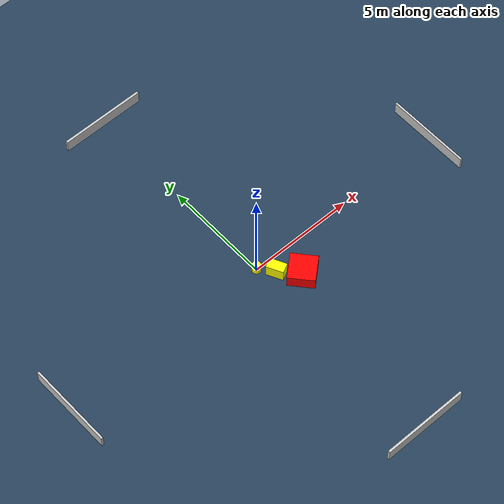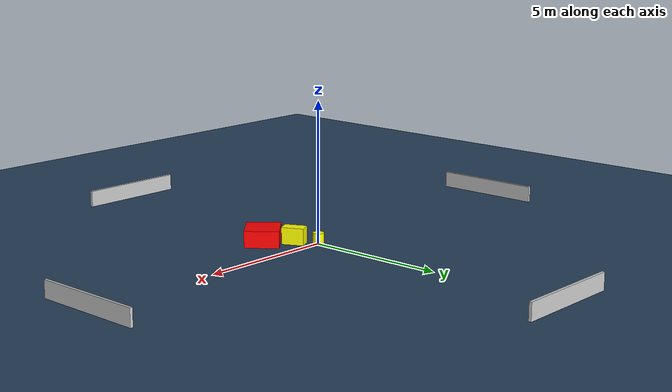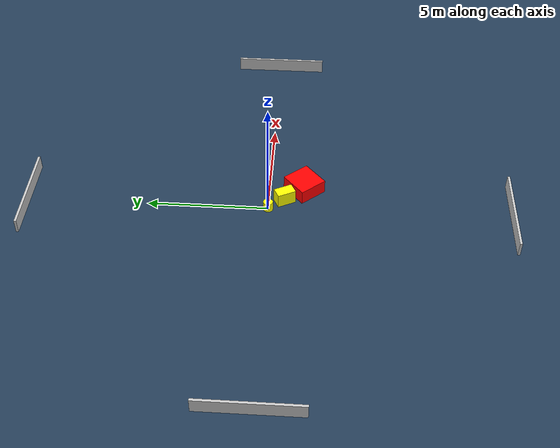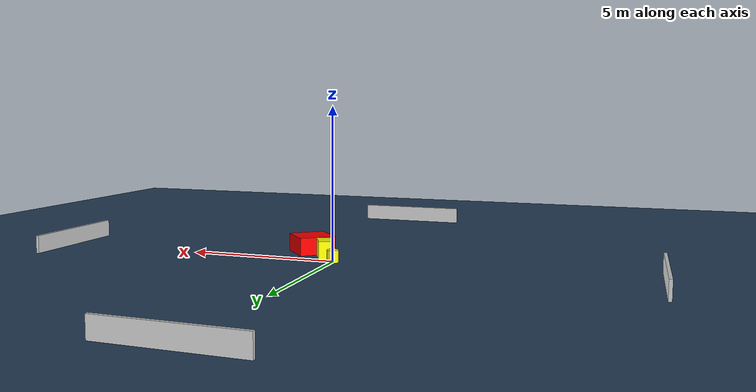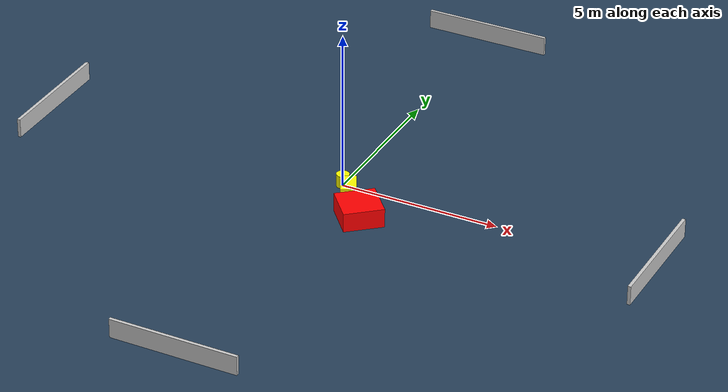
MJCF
<?xml version="1.0" ?>
<mujoco model="generated_environment">
  <option timestep="0.01" integrator="RK4" cone="elliptic"/>
  <default>
    <geom density="1"/>
  </default>
  <asset>
    <texture builtin="gradient" height="3072" name="skybox" rgb1="0.3 0.5 0.7" rgb2="0 0 0" type="skybox" width="512"/>
    <texture builtin="checker" height="300" name="groundplane" rgb1="0.2 0.3 0.4" rgb2="0.1 0.2 0.3" type="2d" width="300"/>
    <material name="groundplane" reflectance="0.2" texrepeat="5 5" texture="groundplane"/>
  </asset>
  <worldbody>
    <light dir="0 0 -1" directional="true" pos="0 0 1.5"/>
    <geom condim="3" friction="0.5 0.005 0.001" material="groundplane" name="floor" pos="0 0 0" size="0 0 0.05" type="plane"/>
    <body name="walls">
      <geom name="wall_1" condim="4" pos="-10.0 0.0 0.3" rgba="0.800000011920929 0.800000011920929 0.800000011920929 1.0" size="0.05 2.0 0.3" type="box"/>
      <geom name="wall_2" condim="4" pos="10.0 0.0 0.3" rgba="0.800000011920929 0.800000011920929 0.800000011920929 1.0" size="0.05 2.0 0.3" type="box"/>
      <geom name="wall_3" condim="4" pos="0.0 -10.0 0.3" rgba="0.800000011920929 0.800000011920929 0.800000011920929 1.0" size="2.0 0.05 0.3" type="box"/>
      <geom name="wall_4" condim="4" pos="0.0 10.0 0.3" rgba="0.800000011920929 0.800000011920929 0.800000011920929 1.0" size="2.0 0.05 0.3" type="box"/>
    </body>
    <body name="robot">
      <joint name="joint_x" type="slide" pos="0 0 0" axis="1 0 0"/>
      <joint name="joint_y" type="slide" pos="0 0 0" axis="0 1 0"/>
      <geom name="robot" type="cylinder" pos="0.0 0.0 0.2" size="0.2 0.2 0.0" mass="5.0" friction="1.0 0.005 0.0001" condim="4" rgba="1.0 1.0 0.0 1.0"/>
    </body>
    <body name="obstacle_1_movable">
      <geom name="obstacle_1_movable" condim="4" pos="0.5231687108230954 -0.6582587117840321 0.3" euler="0 0 116.8709365752518" friction="0.0 0.005 0.001" rgba="1.0 1.0 0.0 1.0" size="0.39437748644878 0.2358108273474464 0.3" type="box" mass="0.1"/>
      <joint type="free"/>
    </body>
    <body name="obstacle_2_static">
      <geom name="obstacle_2_static" condim="4" pos="1.2802734670085933 -1.4413141009657684 0.3" euler="0 0 130.72454685199972" friction="0.0 0.005 0.001" rgba="1.0 0.0 0.0 1.0" size="0.6051431713609645 0.6176683164746666 0.3" type="box"/>
    </body>
  </worldbody>
  <actuator>
    <motor name="actuator_x" joint="joint_x" gear="1" ctrlrange="-1 1"/>
    <motor name="actuator_y" joint="joint_y" gear="1" ctrlrange="-1 1"/>
  </actuator>
</mujoco>
